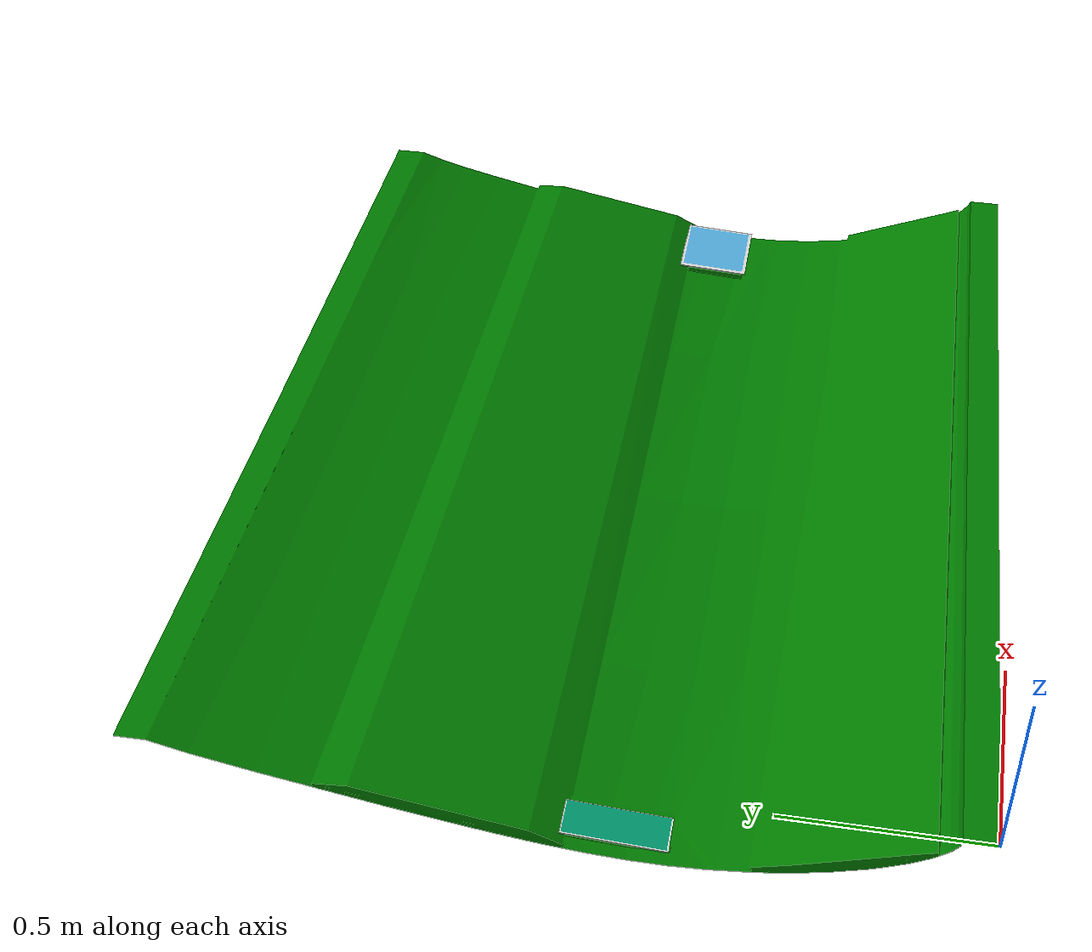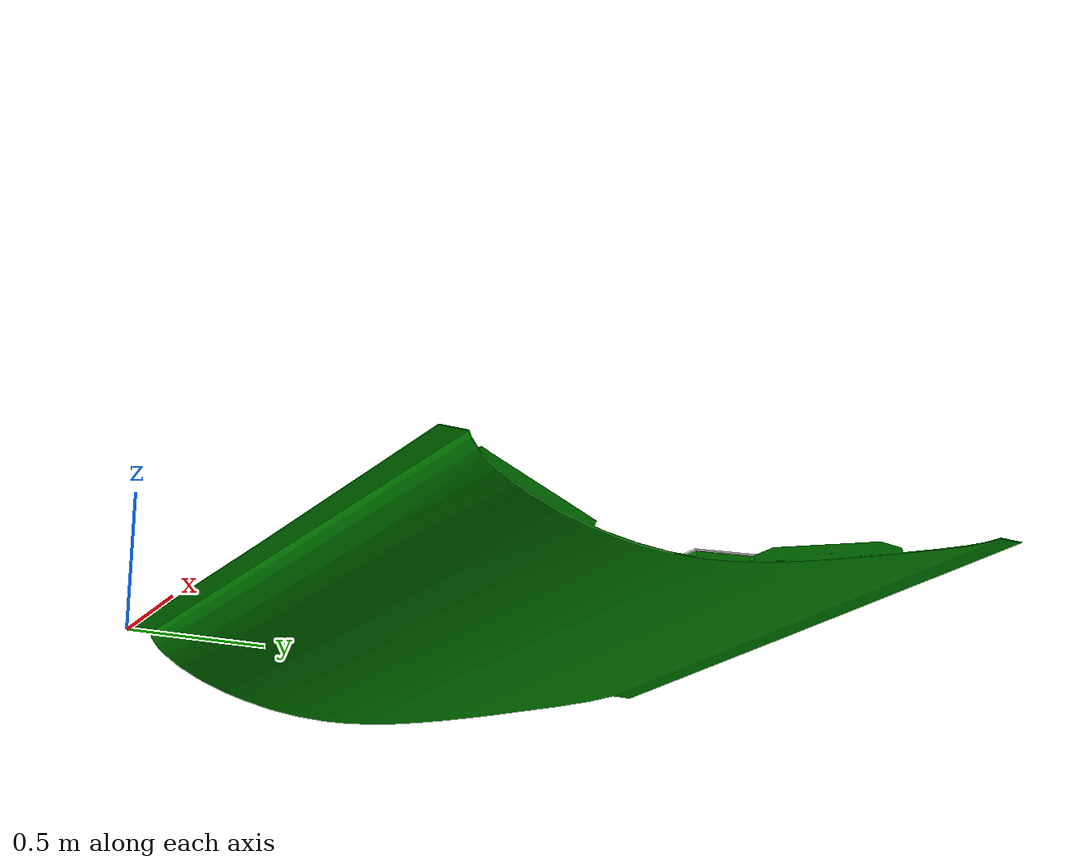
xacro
<?xml version="1.0"?>
<robot name="panels" xmlns:xacro="http://ros.org/wiki/xacro">
<xacro:arg name="payload_extensions" default="false" />
<link name="leeward_mid_panel">
  <visual name="visual">
    <origin rpy="0 0 0"/>
    <geometry><mesh filename="package://rpi_arm_composites_manufacturing_testbed/meshes/panels/leeward_mid.stl"/></geometry>
    <material name="panel">
      <color rgba="0 0.5 0 1"/>
    </material>
  </visual>
  <collision name="collision">
    <origin rpy="0 0 0"/>
    <geometry><mesh filename="package://rpi_arm_composites_manufacturing_testbed/meshes/panels/leeward_mid.stl"/></geometry>
  </collision>
</link>
<link name="leeward_mid_panel_marker_1">
  <visual name="visual">
  <origin rpy="0 0 0" xyz="0 0 0"/>
  <geometry><mesh filename="package://rpi_arm_composites_manufacturing_testbed/meshes/markers/leeward_mid_marker_1.dae"/></geometry>
  </visual>
  <xacro:if value="$(arg payload_extensions)">
    <aruco_marker>
      <gridboard markersX="4" markersY="4" markerLength="0.04" markerSpacing="0.0075" dictionary="DICT_ARUCO_ORIGINAL" firstMarker="16"/>
    </aruco_marker>
  </xacro:if>
</link>
<link name="leeward_mid_panel_marker_2">
  <visual name="visual">
  <origin rpy="0 0 0" xyz="0 0 0"/>
  <geometry><mesh filename="package://rpi_arm_composites_manufacturing_testbed/meshes/markers/leeward_mid_marker_2.dae"/></geometry>
  </visual>
  <xacro:if value="$(arg payload_extensions)">
    <aruco_marker>
      <gridboard markersX="8" markersY="3" markerLength="0.025" markerSpacing=".0075" dictionary="DICT_ARUCO_ORIGINAL" firstMarker="80"/>
    </aruco_marker>
  </xacro:if>
</link>
<link name="leeward_mid_panel_gripper_target">
  <xacro:if value="$(arg payload_extensions)">
    <gripper_ft_threshold>
      <pickup ft="250 250 250 250 250 250"/>
      <place ft="500 500 500 500 500 500"/>
    </gripper_ft_threshold>
  </xacro:if>
</link>

<joint name="leeward_mid_panel_maker_1_j" type="fixed">
  <parent link="leeward_mid_panel"/>
  <child link="leeward_mid_panel_marker_1"/>
  <origin xyz="2.3037 0.8155 -0.197" rpy="0 -${radians(3.76)} ${radians(90)}"/>
</joint>

<joint name="leeward_mid_panel_gripper_target_j" type="fixed">
  <parent link="leeward_mid_panel"/>
  <child link="leeward_mid_panel_gripper_target"/>
  <origin xyz="1.172 1.0553 -.12" rpy="0 ${radians(170)} ${radians(90)}"/>
</joint>

<joint name="leeward_mid_panel_maker_2_j" type="fixed">
  <parent link="leeward_mid_panel"/>
  <child link="leeward_mid_panel_marker_2"/>
  <origin xyz="0.107 0.74274 -.218" rpy="0 -${radians(4.52)} ${radians(90)}"/>
</joint>

</robot>
